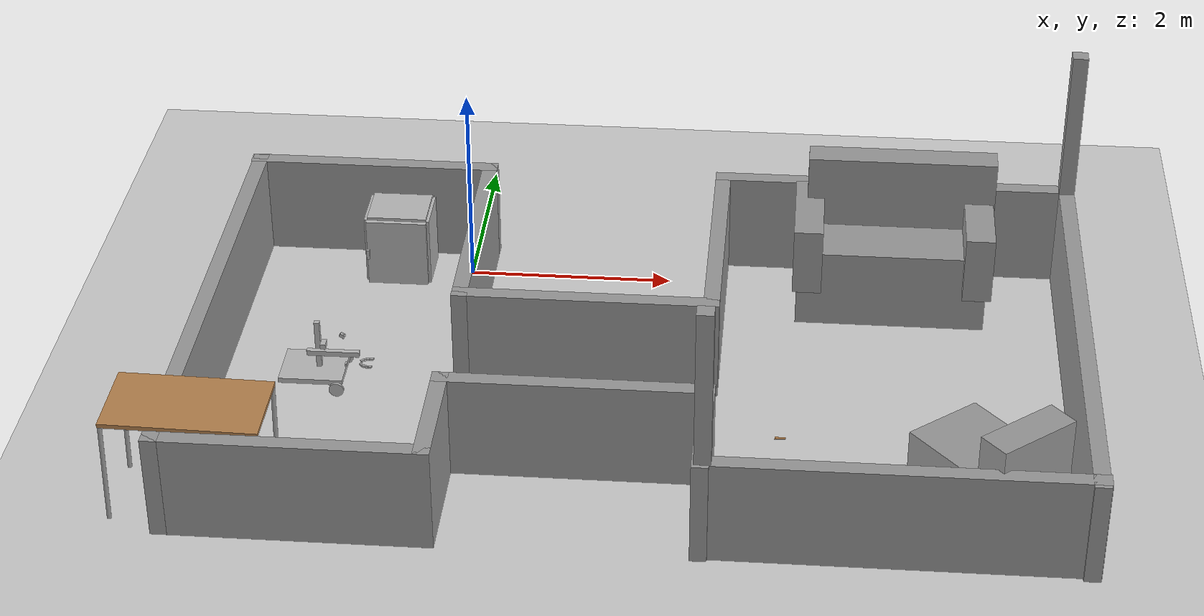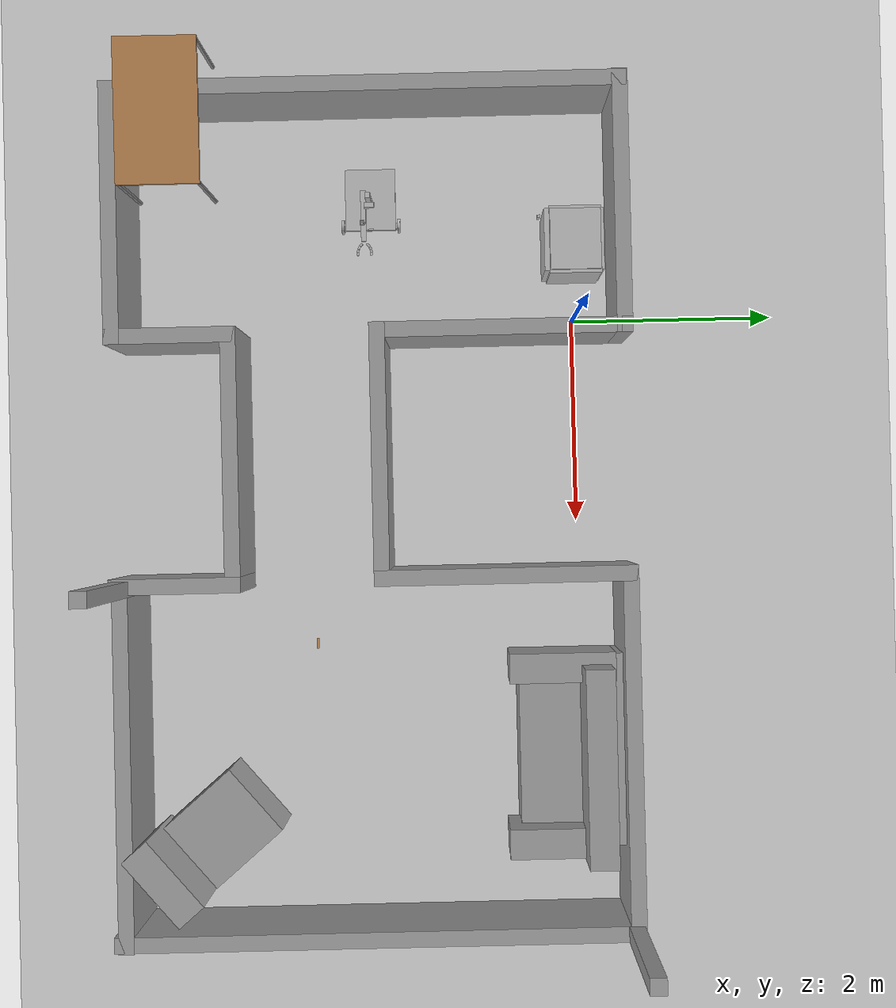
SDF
<sdf version="1.6">
 <world name="default">
  <light name="sun" type="directional">
   <pose>0 0 10 0 -0 0</pose>
   <diffuse>0.8 0.8 0.8 1</diffuse>
   <specular>0.1 0.1 0.1 1</specular>
   <attenuation>
    <range>1000</range>
    <constant>0.9</constant>
    <linear>0.01</linear>
    <quadratic>0.001</quadratic>
   </attenuation>
   <direction>-0.5 0.5 -1</direction>
  </light>
  <model name="ground_plane">
   <static>1</static>
   <link name="link">
    <collision name="collision">
     <geometry><plane><normal>0 0 1</normal><size>100 100</size></plane></geometry>
     <surface><friction><ode><mu>100</mu><mu2>50</mu2></ode></friction></surface>
    </collision>
    <visual name="visual">
     <cast_shadows>0</cast_shadows>
     <geometry><plane><normal>0 0 1</normal><size>100 100</size></plane></geometry>
     <material>
      <script><uri>file://media/materials/scripts/gazebo.material</uri><name>Gazebo/Grey</name></script>
     </material>
    </visual>
   </link>
  </model>
  <gravity>0 0 -9.8</gravity>
  <magnetic_field>6e-06 2.3e-05 -4.2e-05</magnetic_field>
  <atmosphere type="adiabatic"/>
  <physics name="default_physics" default="0" type="ode">
   <max_step_size>0.001</max_step_size>
   <real_time_factor>1</real_time_factor>
   <real_time_update_rate>1000</real_time_update_rate>
  </physics>
  <scene><ambient>0.4 0.4 0.4 1</ambient><background>0.7 0.7 0.7 1</background><shadows>1</shadows></scene>
  <spherical_coordinates>
   <surface_model>EARTH_WGS84</surface_model>
   <latitude_deg>0</latitude_deg>
   <longitude_deg>0</longitude_deg>
   <elevation>0</elevation>
   <heading_deg>0</heading_deg>
  </spherical_coordinates>
  <model name="popcan_arena">
   <pose>1.85412 -2.00368 0 0 -0 0</pose>
   <link name="Wall_1">
    <collision name="Wall_1_Collision">
     <geometry><box><size>5 0.15 1</size></box></geometry>
     <pose>0 0 0.5 0 -0 0</pose>
    </collision>
    <visual name="Wall_1_Visual">
     <pose>0 0 0.5 0 -0 0</pose>
     <geometry><box><size>5 0.15 1</size></box></geometry>
     <material>
      <script><uri>file://media/materials/scripts/gazebo.material</uri><name>Gazebo/Grey</name></script>
      <ambient>1 1 1 1</ambient>
     </material>
    </visual>
    <pose>4.04509 -0.01 0 0 -0 1.5708</pose>
   </link>
   <link name="Wall_2">
    <collision name="Wall_2_Collision">
     <geometry><box><size>0.15 0.15 2.5</size></box></geometry>
     <pose>0 0 1.25 0 -0 0</pose>
    </collision>
    <visual name="Wall_2_Visual">
     <pose>0 0 1.25 0 -0 0</pose>
     <geometry><box><size>0.15 0.15 2.5</size></box></geometry>
     <material>
      <script><uri>file://media/materials/scripts/gazebo.material</uri><name>Gazebo/Grey</name></script>
      <ambient>1 1 1 1</ambient>
     </material>
    </visual>
    <pose>4.04509 2.415 0 0 -0 0</pose>
   </link>
   <link name="Wall_26">
    <collision name="Wall_26_Collision">
     <geometry><box><size>0.15 0.15 2.5</size></box></geometry>
     <pose>0 0 1.25 0 -0 0</pose>
    </collision>
    <visual name="Wall_26_Visual">
     <pose>0 0 1.25 0 -0 0</pose>
     <geometry><box><size>0.15 0.15 2.5</size></box></geometry>
     <material>
      <script><uri>file://media/materials/scripts/gazebo.material</uri><name>Gazebo/Grey</name></script>
      <ambient>1 1 1 1</ambient>
     </material>
    </visual>
    <pose>0.695085 -2.385 0 0 -0 0</pose>
   </link>
   <link name="Wall_28">
    <collision name="Wall_28_Collision">
     <geometry><box><size>2.5 0.15 1</size></box></geometry>
     <pose>0 0 0.5 0 -0 0</pose>
    </collision>
    <visual name="Wall_28_Visual">
     <pose>0 0 0.5 0 -0 0</pose>
     <geometry><box><size>2.5 0.15 1</size></box></geometry>
     <material>
      <script><uri>file://media/materials/scripts/gazebo.material</uri><name>Gazebo/Grey</name></script>
      <ambient>1 1 1 1</ambient>
     </material>
    </visual>
    <pose>-0.519915 -1.325 0 0 -0 3.14159</pose>
   </link>
   <link name="Wall_29">
    <collision name="Wall_29_Collision">
     <geometry><box><size>1.25 0.15 1</size></box></geometry>
     <pose>0 0 0.5 0 -0 0</pose>
    </collision>
    <visual name="Wall_29_Visual">
     <pose>0 0 0.5 0 -0 0</pose>
     <geometry><box><size>1.25 0.15 1</size></box></geometry>
     <material>
      <script><uri>file://media/materials/scripts/gazebo.material</uri><name>Gazebo/Grey</name></script>
      <ambient>1 1 1 1</ambient>
     </material>
    </visual>
    <pose>-1.69491 -1.875 0 0 0 -1.5708</pose>
   </link>
   <link name="Wall_30">
    <collision name="Wall_30_Collision">
     <geometry><box><size>2.5 0.15 1</size></box></geometry>
     <pose>0 0 0.5 0 -0 0</pose>
    </collision>
    <visual name="Wall_30_Visual">
     <pose>0 0 0.5 0 -0 0</pose>
     <geometry><box><size>2.5 0.15 1</size></box></geometry>
     <material>
      <script><uri>file://media/materials/scripts/gazebo.material</uri><name>Gazebo/Grey</name></script>
      <ambient>1 1 1 1</ambient>
     </material>
    </visual>
    <pose>-2.86992 -2.425 0 0 -0 3.14159</pose>
   </link>
   <link name="Wall_33">
    <collision name="Wall_33_Collision">
     <geometry><box><size>5 0.15 1</size></box></geometry>
     <pose>0 0 0.5 0 -0 0</pose>
    </collision>
    <visual name="Wall_33_Visual">
     <pose>0 0 0.5 0 -0 0</pose>
     <geometry><box><size>5 0.15 1</size></box></geometry>
     <material>
      <script><uri>file://media/materials/scripts/gazebo.material</uri><name>Gazebo/Grey</name></script>
      <ambient>1 1 1 1</ambient>
     </material>
    </visual>
    <pose>-4.04491 0 0 0 -0 1.5708</pose>
   </link>
   <link name="Wall_35">
    <collision name="Wall_35_Collision">
     <geometry><box><size>3.5 0.15 1</size></box></geometry>
     <pose>0 0 0.5 0 -0 0</pose>
    </collision>
    <visual name="Wall_35_Visual">
     <pose>0 0 0.5 0 -0 0</pose>
     <geometry><box><size>3.5 0.15 1</size></box></geometry>
     <material>
      <script><uri>file://media/materials/scripts/gazebo.material</uri><name>Gazebo/Grey</name></script>
      <ambient>1 1 1 1</ambient>
     </material>
    </visual>
    <pose>2.32009 2.435 0 0 -0 0</pose>
   </link>
   <link name="Wall_4">
    <collision name="Wall_4_Collision">
     <geometry><box><size>2.5 0.15 1</size></box></geometry>
     <pose>0 0 0.5 0 -0 0</pose>
    </collision>
    <visual name="Wall_4_Visual">
     <pose>0 0 0.5 0 -0 0</pose>
     <geometry><box><size>2.5 0.15 1</size></box></geometry>
     <material>
      <script><uri>file://media/materials/scripts/gazebo.material</uri><name>Gazebo/Grey</name></script>
      <ambient>1 1 1 1</ambient>
     </material>
    </visual>
    <pose>0.645085 1.26 0 0 0 -1.5708</pose>
   </link>
   <link name="Wall_41">
    <collision name="Wall_41_Collision">
     <geometry><box><size>1.25 0.15 1</size></box></geometry>
     <pose>0 0 0.5 0 -0 0</pose>
    </collision>
    <visual name="Wall_41_Visual">
     <pose>0 0 0.5 0 -0 0</pose>
     <geometry><box><size>1.25 0.15 1</size></box></geometry>
     <material>
      <script><uri>file://media/materials/scripts/gazebo.material</uri><name>Gazebo/Grey</name></script>
      <ambient>1 1 1 1</ambient>
     </material>
    </visual>
    <pose>0.675085 -1.875 0 0 0 -1.5708</pose>
   </link>
   <link name="Wall_43">
    <collision name="Wall_43_Collision">
     <geometry><box><size>3.5 0.15 1</size></box></geometry>
     <pose>0 0 0.5 0 -0 0</pose>
    </collision>
    <visual name="Wall_43_Visual">
     <pose>0 0 0.5 0 -0 0</pose>
     <geometry><box><size>3.5 0.15 1</size></box></geometry>
     <material>
      <script><uri>file://media/materials/scripts/gazebo.material</uri><name>Gazebo/Grey</name></script>
      <ambient>1 1 1 1</ambient>
     </material>
    </visual>
    <pose>2.38008 -2.395 0 0 -0 3.14159</pose>
   </link>
   <link name="Wall_5">
    <collision name="Wall_5_Collision">
     <geometry><box><size>2.5 0.15 1</size></box></geometry>
     <pose>0 0 0.5 0 -0 0</pose>
    </collision>
    <visual name="Wall_5_Visual">
     <pose>0 0 0.5 0 -0 0</pose>
     <geometry><box><size>2.5 0.15 1</size></box></geometry>
     <material>
      <script><uri>file://media/materials/scripts/gazebo.material</uri><name>Gazebo/Grey</name></script>
      <ambient>1 1 1 1</ambient>
     </material>
    </visual>
    <pose>-0.529915 0.085 0 0 -0 3.14159</pose>
   </link>
   <link name="Wall_6">
    <collision name="Wall_6_Collision">
     <geometry><box><size>2.5 0.15 1</size></box></geometry>
     <pose>0 0 0.5 0 -0 0</pose>
    </collision>
    <visual name="Wall_6_Visual">
     <pose>0 0 0.5 0 -0 0</pose>
     <geometry><box><size>2.5 0.15 1</size></box></geometry>
     <material>
      <script><uri>file://media/materials/scripts/gazebo.material</uri><name>Gazebo/Grey</name></script>
      <ambient>1 1 1 1</ambient>
     </material>
    </visual>
    <pose>-1.70491 1.26 0 0 -0 1.5708</pose>
   </link>
   <link name="Wall_7">
    <collision name="Wall_7_Collision">
     <geometry><box><size>2.50034 0.15 1</size></box></geometry>
     <pose>0 0 0.5 0 -0 0</pose>
    </collision>
    <visual name="Wall_7_Visual">
     <pose>0 0 0.5 0 -0 0</pose>
     <geometry><box><size>2.50034 0.15 1</size></box></geometry>
     <material>
      <script><uri>file://media/materials/scripts/gazebo.material</uri><name>Gazebo/Grey</name></script>
      <ambient>1 1 1 1</ambient>
     </material>
    </visual>
    <pose>-2.87992 2.435 0 0 -0 3.14159</pose>
   </link>
   <static>1</static>
  </model>
  <model name="table">
   <static>0</static>
   <link name="link">
    <collision name="surface">
     <pose>0 0 1 0 -0 0</pose>
     <geometry><box><size>1.5 0.8 0.03</size></box></geometry>
     <surface><friction><ode><mu>0.6</mu><mu2>0.6</mu2></ode></friction></surface>
    </collision>
    <visual name="visual1">
     <pose>0 0 1 0 -0 0</pose>
     <geometry><box><size>1.4 0.8 0.04</size></box></geometry>
     <material>
      <script><uri>file://media/materials/scripts/gazebo.material</uri><name>Gazebo/Wood</name></script>
     </material>
    </visual>
    <collision name="front_left_leg">
     <pose>0.68 0.38 0.5 0 -0 0</pose>
     <geometry><cylinder><radius>0.02</radius><length>1</length></cylinder></geometry>
    </collision>
    <visual name="front_left_leg">
     <pose>0.68 0.38 0.5 0 -0 0</pose>
     <geometry><cylinder><radius>0.02</radius><length>1</length></cylinder></geometry>
     <material>
      <script><uri>file://media/materials/scripts/gazebo.material</uri><name>Gazebo/Grey</name></script>
     </material>
    </visual>
    <collision name="front_right_leg">
     <pose>0.68 -0.38 0.5 0 -0 0</pose>
     <geometry><cylinder><radius>0.02</radius><length>1</length></cylinder></geometry>
    </collision>
    <visual name="front_right_leg">
     <pose>0.68 -0.38 0.5 0 -0 0</pose>
     <geometry><cylinder><radius>0.02</radius><length>1</length></cylinder></geometry>
     <material>
      <script><uri>file://media/materials/scripts/gazebo.material</uri><name>Gazebo/Grey</name></script>
     </material>
    </visual>
    <collision name="back_right_leg">
     <pose>-0.68 -0.38 0.5 0 -0 0</pose>
     <geometry><cylinder><radius>0.02</radius><length>1</length></cylinder></geometry>
    </collision>
    <visual name="back_right_leg">
     <pose>-0.68 -0.38 0.5 0 -0 0</pose>
     <geometry><cylinder><radius>0.02</radius><length>1</length></cylinder></geometry>
     <material>
      <script><uri>file://media/materials/scripts/gazebo.material</uri><name>Gazebo/Grey</name></script>
     </material>
    </visual>
    <collision name="back_left_leg">
     <pose>-0.68 0.38 0.5 0 -0 0</pose>
     <geometry><cylinder><radius>0.02</radius><length>1</length></cylinder></geometry>
    </collision>
    <visual name="back_left_leg">
     <pose>-0.68 0.38 0.5 0 -0 0</pose>
     <geometry><cylinder><radius>0.02</radius><length>1</length></cylinder></geometry>
     <material>
      <script><uri>file://media/materials/scripts/gazebo.material</uri><name>Gazebo/Grey</name></script>
     </material>
    </visual>
    <inertial>
     <inertia><ixx>1</ixx><ixy>0</ixy><ixz>0</ixz><iyy>1</iyy><iyz>0</iyz><izz>1</izz></inertia>
     <mass>1</mass>
    </inertial>
   </link>
   <pose>-1.98549 -3.95311 0.012513 0 0.017877 -4e-06</pose>
  </model>
  <model name="couch">
   <link name="link_0">
    <pose>-0.01902 -0.002099 -0.285741 0 -0 0</pose>
    <inertial>
     <mass>1.44585</mass>
     <inertia>
      <ixx>0.195146</ixx>
      <ixy>0</ixy>
      <ixz>0</ixz>
      <iyy>0.481156</iyy>
      <iyz>0</iyz>
      <izz>0.526986</izz>
     </inertia>
    </inertial>
    <visual name="visual">
     <geometry><box><size>1.83678 1 0.787161</size></box></geometry>
     <material>
      <lighting>1</lighting>
      <script><uri>file://media/materials/scripts/gazebo.material</uri><name>Gazebo/Grey</name></script>
      <ambient>0.3 0.3 0.3 1</ambient>
      <diffuse>0.7 0.7 0.7 1</diffuse>
      <specular>0.01 0.01 0.01 1</specular>
      <emissive>0 0 0 1</emissive>
     </material>
    </visual>
    <collision name="collision">
     <geometry><box><size>1.83678 1 0.787161</size></box></geometry>
     <surface>
      <friction>
       <ode><mu>1</mu><mu2>1</mu2><fdir1>0 0 0</fdir1><slip1>0</slip1><slip2>0</slip2></ode>
       <torsional>
        <coefficient>1</coefficient>
        <patch_radius>0</patch_radius>
        <surface_radius>0</surface_radius>
        <use_patch_radius>1</use_patch_radius>
        <ode><slip>0</slip></ode>
       </torsional>
      </friction>
      <bounce><restitution_coefficient>0</restitution_coefficient><threshold>1e+06</threshold></bounce>
      <contact>
       <collide_without_contact>0</collide_without_contact>
       <collide_without_contact_bitmask>1</collide_without_contact_bitmask>
       <collide_bitmask>1</collide_bitmask>
       <ode>
        <soft_cfm>0</soft_cfm>
        <soft_erp>0.2</soft_erp>
        <kp>1e+13</kp>
        <kd>1</kd>
        <max_vel>0.01</max_vel>
        <min_depth>0</min_depth>
       </ode>
       <bullet>
        <split_impulse>1</split_impulse>
        <split_impulse_penetration_threshold>-0.01</split_impulse_penetration_threshold>
        <soft_cfm>0</soft_cfm>
        <soft_erp>0.2</soft_erp>
        <kp>1e+13</kp>
        <kd>1</kd>
       </bullet>
      </contact>
     </surface>
    </collision>
   </link>
   <link name="link_1">
    <pose>-0.837255 -0.094169 0.060748 0 -0 0</pose>
    <inertial>
     <mass>0.187695</mass>
     <inertia>
      <ixx>0.0226851</ixx>
      <ixy>0</ixy>
      <ixz>0</ixz>
      <iyy>0.00826742</iyy>
      <iyz>0</iyz>
      <izz>0.0168649</izz>
     </inertia>
    </inertial>
    <visual name="visual">
     <geometry><box><size>0.279699 1 0.671069</size></box></geometry>
     <material>
      <lighting>1</lighting>
      <script><uri>file://media/materials/scripts/gazebo.material</uri><name>Gazebo/Grey</name></script>
      <ambient>0.3 0.3 0.3 1</ambient>
      <diffuse>0.7 0.7 0.7 1</diffuse>
      <specular>0.01 0.01 0.01 1</specular>
      <emissive>0 0 0 1</emissive>
     </material>
    </visual>
    <collision name="collision">
     <geometry><box><size>0.279699 1 0.671069</size></box></geometry>
     <surface>
      <friction>
       <ode><mu>1</mu><mu2>1</mu2><fdir1>0 0 0</fdir1><slip1>0</slip1><slip2>0</slip2></ode>
       <torsional>
        <coefficient>1</coefficient>
        <patch_radius>0</patch_radius>
        <surface_radius>0</surface_radius>
        <use_patch_radius>1</use_patch_radius>
        <ode><slip>0</slip></ode>
       </torsional>
      </friction>
      <bounce><restitution_coefficient>0</restitution_coefficient><threshold>1e+06</threshold></bounce>
      <contact>
       <collide_without_contact>0</collide_without_contact>
       <collide_without_contact_bitmask>1</collide_without_contact_bitmask>
       <collide_bitmask>1</collide_bitmask>
       <ode>
        <soft_cfm>0</soft_cfm>
        <soft_erp>0.2</soft_erp>
        <kp>1e+13</kp>
        <kd>1</kd>
        <max_vel>0.01</max_vel>
        <min_depth>0</min_depth>
       </ode>
       <bullet>
        <split_impulse>1</split_impulse>
        <split_impulse_penetration_threshold>-0.01</split_impulse_penetration_threshold>
        <soft_cfm>0</soft_cfm>
        <soft_erp>0.2</soft_erp>
        <kp>1e+13</kp>
        <kd>1</kd>
       </bullet>
      </contact>
     </surface>
    </collision>
   </link>
   <link name="link_1_clone">
    <pose>0.806895 -0.123312 0.060748 0 -0 0</pose>
    <inertial>
     <mass>0.187695</mass>
     <inertia>
      <ixx>0.0226851</ixx>
      <ixy>0</ixy>
      <ixz>0</ixz>
      <iyy>0.00826742</iyy>
      <iyz>0</iyz>
      <izz>0.0168649</izz>
     </inertia>
    </inertial>
    <visual name="visual">
     <geometry><box><size>0.279699 1 0.671069</size></box></geometry>
     <material>
      <lighting>1</lighting>
      <script><uri>file://media/materials/scripts/gazebo.material</uri><name>Gazebo/Grey</name></script>
      <ambient>0.3 0.3 0.3 1</ambient>
      <diffuse>0.7 0.7 0.7 1</diffuse>
      <specular>0.01 0.01 0.01 1</specular>
      <emissive>0 0 0 1</emissive>
      <shader type="pixel"/>
     </material>
    </visual>
    <collision name="collision">
     <geometry><box><size>0.279699 1 0.671069</size></box></geometry>
     <surface>
      <friction>
       <ode><mu>1</mu><mu2>1</mu2><fdir1>0 0 0</fdir1><slip1>0</slip1><slip2>0</slip2></ode>
       <torsional>
        <coefficient>1</coefficient>
        <patch_radius>0</patch_radius>
        <surface_radius>0</surface_radius>
        <use_patch_radius>1</use_patch_radius>
        <ode><slip>0</slip></ode>
       </torsional>
      </friction>
      <bounce><restitution_coefficient>0</restitution_coefficient><threshold>1e+06</threshold></bounce>
      <contact>
       <collide_without_contact>0</collide_without_contact>
       <collide_without_contact_bitmask>1</collide_without_contact_bitmask>
       <collide_bitmask>1</collide_bitmask>
       <ode>
        <soft_cfm>0</soft_cfm>
        <soft_erp>0.2</soft_erp>
        <kp>1e+13</kp>
        <kd>1</kd>
        <max_vel>0.01</max_vel>
        <min_depth>0</min_depth>
       </ode>
       <bullet>
        <split_impulse>1</split_impulse>
        <split_impulse_penetration_threshold>-0.01</split_impulse_penetration_threshold>
        <soft_cfm>0</soft_cfm>
        <soft_erp>0.2</soft_erp>
        <kp>1e+13</kp>
        <kd>1</kd>
       </bullet>
      </contact>
     </surface>
    </collision>
   </link>
   <link name="link_2">
    <pose>0.049389 0.21958 0.164245 0 -0 0</pose>
    <inertial>
     <mass>0.659998</mass>
     <inertia>
      <ixx>0.100915</ixx>
      <ixy>0</ixy>
      <ixz>0</ixz>
      <iyy>0.279803</iyy>
      <iyz>0</iyz>
      <izz>0.187069</izz>
     </inertia>
    </inertial>
    <visual name="visual">
     <geometry><box><size>1.82397 0.272721 1.32681</size></box></geometry>
     <material>
      <lighting>1</lighting>
      <script><uri>file://media/materials/scripts/gazebo.material</uri><name>Gazebo/Grey</name></script>
      <ambient>0.3 0.3 0.3 1</ambient>
      <diffuse>0.7 0.7 0.7 1</diffuse>
      <specular>0.01 0.01 0.01 1</specular>
      <emissive>0 0 0 1</emissive>
     </material>
    </visual>
    <collision name="collision">
     <geometry><box><size>1.82397 0.272721 1.32681</size></box></geometry>
     <surface>
      <friction>
       <ode><mu>1</mu><mu2>1</mu2><fdir1>0 0 0</fdir1><slip1>0</slip1><slip2>0</slip2></ode>
       <torsional>
        <coefficient>1</coefficient>
        <patch_radius>0</patch_radius>
        <surface_radius>0</surface_radius>
        <use_patch_radius>1</use_patch_radius>
        <ode><slip>0</slip></ode>
       </torsional>
      </friction>
      <bounce><restitution_coefficient>0</restitution_coefficient><threshold>1e+06</threshold></bounce>
      <contact>
       <collide_without_contact>0</collide_without_contact>
       <collide_without_contact_bitmask>1</collide_without_contact_bitmask>
       <collide_bitmask>1</collide_bitmask>
       <ode>
        <soft_cfm>0</soft_cfm>
        <soft_erp>0.2</soft_erp>
        <kp>1e+13</kp>
        <kd>1</kd>
        <max_vel>0.01</max_vel>
        <min_depth>0</min_depth>
       </ode>
       <bullet>
        <split_impulse>1</split_impulse>
        <split_impulse_penetration_threshold>-0.01</split_impulse_penetration_threshold>
        <soft_cfm>0</soft_cfm>
        <soft_erp>0.2</soft_erp>
        <kp>1e+13</kp>
        <kd>1</kd>
       </bullet>
      </contact>
     </surface>
    </collision>
   </link>
   <static>0</static>
   <pose>4.20967 -0.142024 0.679321 0 0 -0.000334</pose>
  </model>
  <model name="chair">
   <link name="link_0">
    <pose>0.00602 0.317394 -0.068747 0 -0 0</pose>
    <inertial>
     <mass>0.46727</mass>
     <inertia>
      <ixx>0.0476836</ixx>
      <ixy>0</ixy>
      <ixz>0</ixz>
      <iyy>0.0433394</iyy>
      <iyz>0</iyz>
      <izz>0.0508582</izz>
     </inertia>
    </inertial>
    <visual name="visual">
     <geometry><box><size>0.772827 0.841913 0.718158</size></box></geometry>
     <material>
      <lighting>1</lighting>
      <script><uri>file://media/materials/scripts/gazebo.material</uri><name>Gazebo/Grey</name></script>
      <ambient>0.3 0.3 0.3 1</ambient>
      <diffuse>0.7 0.7 0.7 1</diffuse>
      <specular>0.01 0.01 0.01 1</specular>
      <emissive>0 0 0 1</emissive>
     </material>
    </visual>
    <collision name="collision">
     <geometry><box><size>0.772827 0.841913 0.718158</size></box></geometry>
     <surface>
      <friction>
       <ode><mu>1</mu><mu2>1</mu2><fdir1>0 0 0</fdir1><slip1>0</slip1><slip2>0</slip2></ode>
       <torsional>
        <coefficient>1</coefficient>
        <patch_radius>0</patch_radius>
        <surface_radius>0</surface_radius>
        <use_patch_radius>1</use_patch_radius>
        <ode><slip>0</slip></ode>
       </torsional>
      </friction>
      <bounce><restitution_coefficient>0</restitution_coefficient><threshold>1e+06</threshold></bounce>
      <contact>
       <collide_without_contact>0</collide_without_contact>
       <collide_without_contact_bitmask>1</collide_without_contact_bitmask>
       <collide_bitmask>1</collide_bitmask>
       <ode>
        <soft_cfm>0</soft_cfm>
        <soft_erp>0.2</soft_erp>
        <kp>1e+13</kp>
        <kd>1</kd>
        <max_vel>0.01</max_vel>
        <min_depth>0</min_depth>
       </ode>
       <bullet>
        <split_impulse>1</split_impulse>
        <split_impulse_penetration_threshold>-0.01</split_impulse_penetration_threshold>
        <soft_cfm>0</soft_cfm>
        <soft_erp>0.2</soft_erp>
        <kp>1e+13</kp>
        <kd>1</kd>
       </bullet>
      </contact>
     </surface>
    </collision>
   </link>
   <link name="link_1">
    <pose>-0.006027 -0.317398 0.068747 0 -0 0</pose>
    <inertial>
     <mass>0.35363</mass>
     <inertia>
      <ixx>0.0617854</ixx>
      <ixy>0</ixy>
      <ixz>0</ixz>
      <iyy>0.0784715</iyy>
      <iyz>0</iyz>
      <izz>0.0222576</izz>
     </inertia>
    </inertial>
    <visual name="visual">
     <geometry><box><size>0.812859 0.307459 1.41495</size></box></geometry>
     <material>
      <lighting>1</lighting>
      <script><uri>file://media/materials/scripts/gazebo.material</uri><name>Gazebo/Grey</name></script>
      <ambient>0.3 0.3 0.3 1</ambient>
      <diffuse>0.7 0.7 0.7 1</diffuse>
      <specular>0.01 0.01 0.01 1</specular>
      <emissive>0 0 0 1</emissive>
     </material>
    </visual>
    <collision name="collision">
     <geometry><box><size>0.812859 0.307459 1.41495</size></box></geometry>
     <surface>
      <friction>
       <ode><mu>1</mu><mu2>1</mu2><fdir1>0 0 0</fdir1><slip1>0</slip1><slip2>0</slip2></ode>
       <torsional>
        <coefficient>1</coefficient>
        <patch_radius>0</patch_radius>
        <surface_radius>0</surface_radius>
        <use_patch_radius>1</use_patch_radius>
        <ode><slip>0</slip></ode>
       </torsional>
      </friction>
      <bounce><restitution_coefficient>0</restitution_coefficient><threshold>1e+06</threshold></bounce>
      <contact>
       <collide_without_contact>0</collide_without_contact>
       <collide_without_contact_bitmask>1</collide_without_contact_bitmask>
       <collide_bitmask>1</collide_bitmask>
       <ode>
        <soft_cfm>0</soft_cfm>
        <soft_erp>0.2</soft_erp>
        <kp>1e+13</kp>
        <kd>1</kd>
        <max_vel>0.01</max_vel>
        <min_depth>0</min_depth>
       </ode>
       <bullet>
        <split_impulse>1</split_impulse>
        <split_impulse_penetration_threshold>-0.01</split_impulse_penetration_threshold>
        <soft_cfm>0</soft_cfm>
        <soft_erp>0.2</soft_erp>
        <kp>1e+13</kp>
        <kd>1</kd>
       </bullet>
      </contact>
     </surface>
    </collision>
   </link>
   <static>0</static>
   <pose>5.08793 -3.75825 0.427826 0 -0 0.705865</pose>
  </model>
  <model name="popcanbot">
   <link name="base_link">
    <inertial>
     <pose>-0.24902 0 -4.9e-05 0 -0 0</pose>
     <mass>10.2</mass>
     <inertia>
      <ixx>0.213547</ixx>
      <ixy>0</ixy>
      <ixz>-0.000125345</ixz>
      <iyy>0.327216</iyy>
      <iyz>0</iyz>
      <izz>0.53542</izz>
     </inertia>
    </inertial>
    <collision name="base_link_fixed_joint_lump__chassis_link_collision">
     <pose>-0.2545 0 0 0 -0 0</pose>
     <geometry><box><size>0.609 0.5 0.05</size></box></geometry>
    </collision>
    <collision name="base_link_fixed_joint_lump__main_axle_collision_1">
     <pose>0 0 -0.055 0 -0 0</pose>
     <geometry><box><size>0.0625 0.55 0.0625</size></box></geometry>
    </collision>
    <collision name="base_link_fixed_joint_lump__sonar_link_collision_2">
     <pose>0.05 0 0.05 0 -0.1 0</pose>
     <geometry><box><size>0.015 0.05 0.02</size></box></geometry>
    </collision>
    <visual name="base_link_fixed_joint_lump__chassis_link_visual">
     <pose>-0.2545 0 0 0 -0 0</pose>
     <geometry><box><size>0.609 0.5 0.05</size></box></geometry>
    </visual>
    <visual name="base_link_fixed_joint_lump__main_axle_visual_1">
     <pose>0 0 -0.055 0 -0 0</pose>
     <geometry><box><size>0.0625 0.55 0.0625</size></box></geometry>
    </visual>
    <visual name="base_link_fixed_joint_lump__sonar_link_visual_2">
     <pose>0.05 0 0.05 0 -0.1 0</pose>
     <geometry><box><size>0.015 0.05 0.02</size></box></geometry>
     <material><script><uri>__default__</uri><name>__default__</name></script></material>
    </visual>
    <sensor name="sonar1" type="ray">
     <update_rate>5</update_rate>
     <ray>
      <scan>
       <horizontal>
        <samples>5</samples>
        <resolution>1</resolution>
        <min_angle>-0.25</min_angle>
        <max_angle>0.25</max_angle>
       </horizontal>
       <vertical>
        <samples>5</samples>
        <resolution>1</resolution>
        <min_angle>-0.25</min_angle>
        <max_angle>0.25</max_angle>
       </vertical>
      </scan>
      <range><min>0.01</min><max>0.75</max><resolution>0.01</resolution></range>
     </ray>
     <plugin name="gazebo_ros_range" filename="libgazebo_ros_range.so">
      <gaussianNoise>0.005</gaussianNoise>
      <alwaysOn>true</alwaysOn>
      <updateRate>5</updateRate>
      <topicName>/popcanbot/sonar</topicName>
      <frameName>sonar_link</frameName>
      <fov>0.5</fov>
      <radiation>ultrasound</radiation>
      <robotNamespace>/</robotNamespace>
     </plugin>
     <pose>0.05 0 0.05 0 -0.1 0</pose>
    </sensor>
   </link>
   <link name="arm_vertical">
    <pose>-0.203 0 0.0125 0 -0 0</pose>
    <inertial>
     <pose>0 0 0.25 0 -0 0</pose>
     <mass>1</mass>
     <inertia>
      <ixx>0.0210417</ixx>
      <ixy>0</ixy>
      <ixz>0</ixz>
      <iyy>0.0210417</iyy>
      <iyz>0</iyz>
      <izz>0.000416667</izz>
     </inertia>
    </inertial>
    <collision name="arm_vertical_collision">
     <pose>0 0 0.25 0 -0 0</pose>
     <geometry><box><size>0.05 0.05 0.5</size></box></geometry>
    </collision>
    <visual name="arm_vertical_visual">
     <pose>0 0 0.25 0 -0 0</pose>
     <geometry><box><size>0.05 0.05 0.5</size></box></geometry>
    </visual>
   </link>
   <joint name="arm_vertical_rotary_joint" type="revolute">
    <child>arm_vertical</child>
    <parent>base_link</parent>
    <axis>
     <xyz>0 0 -1</xyz>
     <limit><lower>-1.6</lower><upper>1.6</upper><effort>100</effort><velocity>0.5</velocity></limit>
     <dynamics>
      <damping>0.1</damping>
      <friction>0.1</friction>
      <spring_reference>0</spring_reference>
      <spring_stiffness>0</spring_stiffness>
     </dynamics>
     <use_parent_model_frame>1</use_parent_model_frame>
    </axis>
   </joint>
   <link name="arm_vertical_platform">
    <pose>-0.153 0 0.2625 0 -0 0</pose>
    <inertial>
     <mass>0.1</mass>
     <inertia>
      <ixx>0.000104167</ixx>
      <ixy>0</ixy>
      <ixz>0</ixz>
      <iyy>4.16667e-05</iyy>
      <iyz>0</iyz>
      <izz>0.000104167</izz>
     </inertia>
    </inertial>
    <collision name="arm_vertical_platform_collision">
     <geometry><box><size>0.05 0.1 0.05</size></box></geometry>
    </collision>
    <visual name="arm_vertical_platform_visual">
     <geometry><box><size>0.05 0.1 0.05</size></box></geometry>
    </visual>
   </link>
   <joint name="arm_vertical_platform_joint" type="prismatic">
    <child>arm_vertical_platform</child>
    <parent>arm_vertical</parent>
    <axis>
     <xyz>0 0 1</xyz>
     <limit><lower>-0.14</lower><upper>0.35</upper><effort>20</effort><velocity>0.25</velocity></limit>
     <dynamics>
      <damping>0.1</damping>
      <friction>0.1</friction>
      <spring_reference>0</spring_reference>
      <spring_stiffness>0</spring_stiffness>
     </dynamics>
     <use_parent_model_frame>1</use_parent_model_frame>
    </axis>
   </joint>
   <link name="arm_horizontal">
    <pose>-0.053 -0.06 0.2125 0 -0 0</pose>
    <inertial>
     <mass>0.2</mass>
     <inertia>
      <ixx>8.33333e-05</ixx>
      <ixy>0</ixy>
      <ixz>0</ixz>
      <iyy>0.00420833</iyy>
      <iyz>0</iyz>
      <izz>0.00420833</izz>
     </inertia>
    </inertial>
    <collision name="arm_horizontal_collision">
     <geometry><box><size>0.5 0.05 0.05</size></box></geometry>
    </collision>
    <visual name="arm_horizontal_visual"><geometry><box><size>0.5 0.05 0.05</size></box></geometry></visual>
   </link>
   <joint name="arm_horizontal_platform_joint" type="prismatic">
    <child>arm_horizontal</child>
    <parent>arm_vertical_platform</parent>
    <axis>
     <xyz>1 0 0</xyz>
     <limit><lower>-0.22</lower><upper>0.05</upper><effort>20</effort><velocity>0.25</velocity></limit>
     <dynamics>
      <damping>0.1</damping>
      <friction>0.1</friction>
      <spring_reference>0</spring_reference>
      <spring_stiffness>0</spring_stiffness>
     </dynamics>
     <use_parent_model_frame>1</use_parent_model_frame>
    </axis>
   </joint>
   <link name="camera_mast">
    <pose>0.047 -0.06 0.4125 0 -0 0</pose>
    <inertial>
     <mass>0.2</mass>
     <inertia>
      <ixx>3.59176e-05</ixx>
      <ixy>0</ixy>
      <ixz>6.21359e-06</ixz>
      <iyy>4.91667e-05</iyy>
      <iyz>0</iyz>
      <izz>4.65824e-05</izz>
     </inertia>
    </inertial>
    <collision name="camera_mast_collision">
     <geometry><box><size>0.04 0.02 0.03</size></box></geometry>
    </collision>
    <collision name="camera_mast_fixed_joint_lump__camera_link_collision_1">
     <pose>0 0 0 0 0.6 0</pose>
     <geometry><box><size>0.05 0.04 0.03</size></box></geometry>
    </collision>
    <visual name="camera_mast_visual"><geometry><box><size>0.04 0.02 0.03</size></box></geometry></visual>
    <visual name="camera_mast_fixed_joint_lump__camera_link_visual_1">
     <pose>0 0 0 0 0.6 0</pose>
     <geometry><box><size>0.05 0.04 0.03</size></box></geometry>
     <material><script><uri>__default__</uri><name>__default__</name></script></material>
    </visual>
    <sensor name="camera1" type="camera">
     <update_rate>10</update_rate>
     <camera name="head">
      <horizontal_fov>1.5</horizontal_fov>
      <image><width>640</width><height>480</height><format>R8G8B8</format></image>
      <clip><near>0.05</near><far>50</far></clip>
      <noise><type>gaussian</type><mean>0</mean><stddev>0.007</stddev></noise>
     </camera>
     <plugin name="camera_controller" filename="libgazebo_ros_camera.so">
      <alwaysOn>true</alwaysOn>
      <updateRate>0.0</updateRate>
      <cameraName>popcanbot/camera1</cameraName>
      <imageTopicName>image_raw</imageTopicName>
      <cameraInfoTopicName>camera_info</cameraInfoTopicName>
      <frameName>camera_link_optical</frameName>
      <hackBaseline>0.0</hackBaseline>
      <distortionK1>0.0</distortionK1>
      <distortionK2>0.0</distortionK2>
      <distortionK3>0.0</distortionK3>
      <distortionT1>0.0</distortionT1>
      <distortionT2>0.0</distortionT2>
      <robotNamespace>/</robotNamespace>
     </plugin>
     <pose>0 0 0 0 0.6 0</pose>
    </sensor>
   </link>
   <joint name="camera_mast_joint" type="prismatic">
    <child>camera_mast</child>
    <parent>arm_horizontal</parent>
    <axis>
     <xyz>0 0 1</xyz>
     <limit><lower>0</lower><upper>0.5</upper><effort>20</effort><velocity>0.25</velocity></limit>
     <dynamics>
      <damping>0.1</damping>
      <friction>0.1</friction>
      <spring_reference>0</spring_reference>
      <spring_stiffness>0</spring_stiffness>
     </dynamics>
     <use_parent_model_frame>1</use_parent_model_frame>
    </axis>
   </joint>
   <link name="gripper_left">
    <pose>0.197 -0.047 0.1125 0 -0 0.9</pose>
    <inertial>
     <pose>0.069339 -0.019771 0 0 -0 0</pose>
     <mass>0.2</mass>
     <inertia>
      <ixx>8.09228e-05</ixx>
      <ixy>0.000101107</ixy>
      <ixz>0</ixz>
      <iyy>0.000183802</iyy>
      <iyz>0</iyz>
      <izz>0.000251392</izz>
     </inertia>
    </inertial>
    <collision name="gripper_left_collision">
     <pose>0.03 0 0 0 -0 0</pose>
     <geometry><box><size>0.04 0.02 0.02</size></box></geometry>
    </collision>
    <collision name="gripper_left_mid1_collision_1">
     <pose>0.058832 -0.008291 0 0 0 -0.28</pose>
     <geometry><box><size>0.04 0.02 0.02</size></box></geometry>
    </collision>
    <collision name="gripper_left_mid2_collision_2">
     <pose>0.084249 -0.024226 0 0 0 -0.56</pose>
     <geometry><box><size>0.04 0.02 0.02</size></box></geometry>
    </collision>
    <collision name="gripper_left_tip_collision_3">
     <pose>0.104273 -0.046566 0 0 0 -0.84</pose>
     <geometry><box><size>0.04 0.02 0.02</size></box></geometry>
    </collision>
    <visual name="gripper_left_visual">
     <pose>0.03 0 0 0 -0 0</pose>
     <geometry><box><size>0.04 0.02 0.02</size></box></geometry>
    </visual>
    <visual name="gripper_left_mid1_visual_1">
     <pose>0.058832 -0.008291 0 0 0 -0.28</pose>
     <geometry><box><size>0.04 0.02 0.02</size></box></geometry>
    </visual>
    <visual name="gripper_left_mid2_visual_2">
     <pose>0.084249 -0.024226 0 0 0 -0.56</pose>
     <geometry><box><size>0.04 0.02 0.02</size></box></geometry>
    </visual>
    <visual name="gripper_left_tip_visual_3">
     <pose>0.104273 -0.046566 0 0 0 -0.84</pose>
     <geometry><box><size>0.04 0.02 0.02</size></box></geometry>
    </visual>
   </link>
   <joint name="gripper_left_joint" type="revolute">
    <child>gripper_left</child>
    <parent>arm_horizontal</parent>
    <axis>
     <xyz>0 0 1</xyz>
     <limit><lower>-0.5</lower><upper>0</upper><effort>200</effort><velocity>0.5</velocity></limit>
     <dynamics>
      <damping>0.1</damping>
      <friction>0.1</friction>
      <spring_reference>0</spring_reference>
      <spring_stiffness>0</spring_stiffness>
     </dynamics>
     <use_parent_model_frame>1</use_parent_model_frame>
    </axis>
   </joint>
   <link name="gripper_right">
    <pose>0.197 -0.073 0.1125 -3.14159 0 -0.9</pose>
    <inertial>
     <pose>0.069339 -0.019771 0 0 -0 0</pose>
     <mass>0.2</mass>
     <inertia>
      <ixx>8.09228e-05</ixx>
      <ixy>0.000101107</ixy>
      <ixz>0</ixz>
      <iyy>0.000183802</iyy>
      <iyz>0</iyz>
      <izz>0.000251392</izz>
     </inertia>
    </inertial>
    <collision name="gripper_right_collision">
     <pose>0.03 0 0 0 -0 0</pose>
     <geometry><box><size>0.04 0.02 0.02</size></box></geometry>
    </collision>
    <collision name="gripper_right_mid1_collision_1">
     <pose>0.058832 -0.008291 0 0 0 -0.28</pose>
     <geometry><box><size>0.04 0.02 0.02</size></box></geometry>
    </collision>
    <collision name="gripper_right_mid2_collision_2">
     <pose>0.084249 -0.024226 0 0 0 -0.56</pose>
     <geometry><box><size>0.04 0.02 0.02</size></box></geometry>
    </collision>
    <collision name="gripper_right_tip_collision_3">
     <pose>0.104273 -0.046566 0 0 0 -0.84</pose>
     <geometry><box><size>0.04 0.02 0.02</size></box></geometry>
    </collision>
    <visual name="gripper_right_visual">
     <pose>0.03 0 0 0 -0 0</pose>
     <geometry><box><size>0.04 0.02 0.02</size></box></geometry>
    </visual>
    <visual name="gripper_right_mid1_visual_1">
     <pose>0.058832 -0.008291 0 0 0 -0.28</pose>
     <geometry><box><size>0.04 0.02 0.02</size></box></geometry>
    </visual>
    <visual name="gripper_right_mid2_visual_2">
     <pose>0.084249 -0.024226 0 0 0 -0.56</pose>
     <geometry><box><size>0.04 0.02 0.02</size></box></geometry>
    </visual>
    <visual name="gripper_right_tip_visual_3">
     <pose>0.104273 -0.046566 0 0 0 -0.84</pose>
     <geometry><box><size>0.04 0.02 0.02</size></box></geometry>
    </visual>
   </link>
   <joint name="gripper_right_joint" type="revolute">
    <child>gripper_right</child>
    <parent>arm_horizontal</parent>
    <axis>
     <xyz>0 0 -1</xyz>
     <limit><lower>-0.5</lower><upper>0</upper><effort>200</effort><velocity>0.5</velocity></limit>
     <dynamics>
      <damping>0.1</damping>
      <friction>0.1</friction>
      <spring_reference>0</spring_reference>
      <spring_stiffness>0</spring_stiffness>
     </dynamics>
     <use_parent_model_frame>1</use_parent_model_frame>
    </axis>
   </joint>
   <link name="caster_block">
    <pose>-0.509 0 -0.025 0 -0 0</pose>
    <inertial>
     <mass>0.1</mass>
     <inertia><ixx>1.5e-05</ixx><ixy>0</ixy><ixz>0</ixz><iyy>1.5e-05</iyy><iyz>0</iyz><izz>1.5e-05</izz></inertia>
    </inertial>
    <collision name="caster_block_collision">
     <geometry><box><size>0.03 0.03 0.03</size></box></geometry>
    </collision>
    <visual name="caster_block_visual"><geometry><box><size>0.03 0.03 0.03</size></box></geometry></visual>
   </link>
   <joint name="caster_joint" type="revolute">
    <child>caster_block</child>
    <parent>base_link</parent>
    <axis>
     <xyz>0 0 1</xyz>
     <limit><lower>-1e+16</lower><upper>1e+16</upper></limit>
     <dynamics><spring_reference>0</spring_reference><spring_stiffness>0</spring_stiffness></dynamics>
     <use_parent_model_frame>1</use_parent_model_frame>
    </axis>
   </joint>
   <link name="wheel_caster">
    <pose>-0.489 0 -0.085 0 -0 0</pose>
    <inertial>
     <pose>0 0 0 1.5708 -0 0</pose>
     <mass>0.1</mass>
     <inertia>
      <ixx>4.52083e-05</ixx>
      <ixy>0</ixy>
      <ixz>0</ixz>
      <iyy>4.52083e-05</iyy>
      <iyz>0</iyz>
      <izz>8e-05</izz>
     </inertia>
    </inertial>
    <collision name="wheel_caster_collision">
     <pose>0 0 0 1.5708 -0 0</pose>
     <geometry><cylinder><length>0.025</length><radius>0.04</radius></cylinder></geometry>
     <surface>
      <contact><ode><kp>1e+07</kp><kd>1</kd></ode></contact>
      <friction><ode><mu>20</mu><mu2>10</mu2></ode></friction>
     </surface>
    </collision>
    <visual name="wheel_caster_visual">
     <pose>0 0 0 1.5708 -0 0</pose>
     <geometry><cylinder><length>0.025</length><radius>0.04</radius></cylinder></geometry>
     <material><script><uri>__default__</uri><name>__default__</name></script></material>
    </visual>
   </link>
   <joint name="wheel_caster_joint" type="revolute">
    <child>wheel_caster</child>
    <parent>caster_block</parent>
    <axis>
     <xyz>0 1 0</xyz>
     <limit><lower>-1e+16</lower><upper>1e+16</upper></limit>
     <dynamics><spring_reference>0</spring_reference><spring_stiffness>0</spring_stiffness></dynamics>
     <use_parent_model_frame>1</use_parent_model_frame>
    </axis>
   </joint>
   <link name="wheel_front_left">
    <pose>0 0.28 -0.055 0 -0 0</pose>
    <inertial>
     <pose>0 0 0 1.5708 -0 0</pose>
     <mass>0.2</mass>
     <inertia>
      <ixx>0.000255417</ixx>
      <ixy>0</ixy>
      <ixz>0</ixz>
      <iyy>0.000255417</iyy>
      <iyz>0</iyz>
      <izz>0.00049</izz>
     </inertia>
    </inertial>
    <collision name="wheel_front_left_collision">
     <pose>0 0 0 1.5708 -0 0</pose>
     <geometry><cylinder><length>0.025</length><radius>0.07</radius></cylinder></geometry>
     <surface>
      <contact><ode><kp>1e+07</kp><kd>1</kd></ode></contact>
      <friction><ode><mu>200</mu><mu2>100</mu2></ode></friction>
     </surface>
    </collision>
    <visual name="wheel_front_left_visual">
     <pose>0 0 0 1.5708 -0 0</pose>
     <geometry><cylinder><length>0.025</length><radius>0.07</radius></cylinder></geometry>
     <material><script><uri>__default__</uri><name>__default__</name></script></material>
    </visual>
   </link>
   <joint name="wheel_front_left_joint" type="revolute">
    <child>wheel_front_left</child>
    <parent>base_link</parent>
    <axis>
     <xyz>0 1 0</xyz>
     <limit><lower>-1e+16</lower><upper>1e+16</upper></limit>
     <dynamics><spring_reference>0</spring_reference><spring_stiffness>0</spring_stiffness></dynamics>
     <use_parent_model_frame>1</use_parent_model_frame>
    </axis>
   </joint>
   <link name="wheel_front_right">
    <pose>0 -0.28 -0.055 0 -0 0</pose>
    <inertial>
     <pose>0 0 0 1.5708 -0 0</pose>
     <mass>0.2</mass>
     <inertia>
      <ixx>0.000255417</ixx>
      <ixy>0</ixy>
      <ixz>0</ixz>
      <iyy>0.000255417</iyy>
      <iyz>0</iyz>
      <izz>0.00049</izz>
     </inertia>
    </inertial>
    <collision name="wheel_front_right_collision">
     <pose>0 0 0 1.5708 -0 0</pose>
     <geometry><cylinder><length>0.025</length><radius>0.07</radius></cylinder></geometry>
     <surface>
      <contact><ode><kp>1e+07</kp><kd>1</kd></ode></contact>
      <friction><ode><mu>200</mu><mu2>100</mu2></ode></friction>
     </surface>
    </collision>
    <visual name="wheel_front_right_visual">
     <pose>0 0 0 1.5708 -0 0</pose>
     <geometry><cylinder><length>0.025</length><radius>0.07</radius></cylinder></geometry>
     <material><script><uri>__default__</uri><name>__default__</name></script></material>
    </visual>
   </link>
   <joint name="wheel_front_right_joint" type="revolute">
    <child>wheel_front_right</child>
    <parent>base_link</parent>
    <axis>
     <xyz>0 1 0</xyz>
     <limit><lower>-1e+16</lower><upper>1e+16</upper></limit>
     <dynamics><spring_reference>0</spring_reference><spring_stiffness>0</spring_stiffness></dynamics>
     <use_parent_model_frame>1</use_parent_model_frame>
    </axis>
   </joint>
   <static>0</static>
   <plugin name="gazebo_ros_control" filename="libgazebo_ros_control.so">
    <robotNamespace>/popcanbot</robotNamespace>
    <robotParam>robot_description</robotParam>
    <robotSimType>gazebo_ros_control/DefaultRobotHWSim</robotSimType>
   </plugin>
   <plugin name="differential_drive_controller" filename="libgazebo_ros_diff_drive.so">
    <alwaysOn>true</alwaysOn>
    <updateRate>10</updateRate>
    <legacyMode>false</legacyMode>
    <leftJoint>wheel_front_left_joint</leftJoint>
    <rightJoint>wheel_front_right_joint</rightJoint>
    <wheelSeparation>0.56</wheelSeparation>
    <wheelDiameter>0.14</wheelDiameter>
    <torque>20</torque>
    <commandTopic>/popcanbot/cmd_vel</commandTopic>
    <odometryTopic>/popcanbot/odom</odometryTopic>
    <odometryFrame>odom</odometryFrame>
    <robotBaseFrame>base_link</robotBaseFrame>
    <robotNamespace>/</robotNamespace>
   </plugin>
   <pose>-1 -2 0.13 0 -0 0</pose>
  </model>
  <model name="fridge">
   <link name="fridge_base_link">
    <inertial>
     <pose>-0.041667 0 0.35 0 -0 0</pose>
     <mass>30</mass>
     <inertia>
      <ixx>3.32469</ixx>
      <ixy>0</ixy>
      <ixz>5.55112e-17</ixz>
      <iyy>2.61034</iyy>
      <iyz>0</iyz>
      <izz>2.25418</izz>
     </inertia>
    </inertial>
    <collision name="fridge_base_link_fixed_joint_lump__fridge_bottom_collision">
     <geometry><box><size>0.49 0.588 0.05</size></box></geometry>
    </collision>
    <collision name="fridge_base_link_fixed_joint_lump__fridge_back_collision_1">
     <pose>-0.25 0 0.35 0 -0 0</pose>
     <geometry><box><size>0.05 0.6 0.7</size></box></geometry>
    </collision>
    <collision name="fridge_base_link_fixed_joint_lump__fridge_left_collision_2">
     <pose>0 0.3 0.35 0 -0 0</pose>
     <geometry><box><size>0.5 0.05 0.7</size></box></geometry>
    </collision>
    <collision name="fridge_base_link_fixed_joint_lump__fridge_right_collision_3">
     <pose>0 -0.3 0.35 0 -0 0</pose>
     <geometry><box><size>0.5 0.05 0.7</size></box></geometry>
    </collision>
    <collision name="fridge_base_link_fixed_joint_lump__fridge_shelf_collision_4">
     <pose>0 0 0.35 0 -0 0</pose>
     <geometry><box><size>0.49 0.588 0.045</size></box></geometry>
    </collision>
    <collision name="fridge_base_link_fixed_joint_lump__fridge_top_collision_5">
     <pose>0 0 0.7 0 -0 0</pose>
     <geometry><box><size>0.49 0.588 0.05</size></box></geometry>
    </collision>
    <visual name="fridge_base_link_fixed_joint_lump__fridge_bottom_visual">
     <geometry><box><size>0.49 0.588 0.05</size></box></geometry>
    </visual>
    <visual name="fridge_base_link_fixed_joint_lump__fridge_back_visual_1">
     <pose>-0.25 0 0.35 0 -0 0</pose>
     <geometry><box><size>0.05 0.6 0.7</size></box></geometry>
    </visual>
    <visual name="fridge_base_link_fixed_joint_lump__fridge_left_visual_2">
     <pose>0 0.3 0.35 0 -0 0</pose>
     <geometry><box><size>0.5 0.05 0.7</size></box></geometry>
    </visual>
    <visual name="fridge_base_link_fixed_joint_lump__fridge_right_visual_3">
     <pose>0 -0.3 0.35 0 -0 0</pose>
     <geometry><box><size>0.5 0.05 0.7</size></box></geometry>
    </visual>
    <visual name="fridge_base_link_fixed_joint_lump__fridge_shelf_visual_4">
     <pose>0 0 0.35 0 -0 0</pose>
     <geometry><box><size>0.49 0.588 0.045</size></box></geometry>
    </visual>
    <visual name="fridge_base_link_fixed_joint_lump__fridge_top_visual_5">
     <pose>0 0 0.7 0 -0 0</pose>
     <geometry><box><size>0.49 0.588 0.05</size></box></geometry>
    </visual>
   </link>
   <link name="fridge_door">
    <pose>0.25 0.3 0.35 0 -0.001 0</pose>
    <inertial>
     <pose>0.026177 -0.305588 0 0 -0 0</pose>
     <mass>5.1</mass>
     <inertia>
      <ixx>0.362221</ixx>
      <ixy>0.00167647</ixy>
      <ixz>0</ixz>
      <iyy>0.20565</iyy>
      <iyz>0</iyz>
      <izz>0.159371</izz>
     </inertia>
    </inertial>
    <collision name="fridge_door_collision">
     <pose>0.025 -0.3 0 0 -0 0</pose>
     <geometry><box><size>0.05 0.6 0.7</size></box></geometry>
    </collision>
    <collision name="fridge_door_fixed_joint_lump__handle_front_collision_1">
     <pose>0.085 -0.585 0 0 -0 0</pose>
     <geometry><box><size>0.025 0.03 0.1</size></box></geometry>
    </collision>
    <visual name="fridge_door_visual">
     <pose>0.025 -0.3 0 0 -0 0</pose>
     <geometry><box><size>0.05 0.6 0.7</size></box></geometry>
    </visual>
    <visual name="fridge_door_fixed_joint_lump__handle_front_visual_1">
     <pose>0.085 -0.585 0 0 -0 0</pose>
     <geometry><box><size>0.025 0.03 0.1</size></box></geometry>
    </visual>
   </link>
   <joint name="door_joint" type="revolute">
    <child>fridge_door</child>
    <parent>fridge_base_link</parent>
    <axis>
     <xyz>-0.001 0 1</xyz>
     <limit><lower>0</lower><upper>2.5</upper><effort>10</effort><velocity>0.1</velocity></limit>
     <dynamics>
      <damping>0.1</damping>
      <friction>0.1</friction>
      <spring_reference>0</spring_reference>
      <spring_stiffness>0</spring_stiffness>
     </dynamics>
     <use_parent_model_frame>1</use_parent_model_frame>
    </axis>
   </joint>
   <pose>-0.71534 0.002465 0.025 0 0 -1.57097</pose>
  </model>
  <model name="popcan">
   <link name="popcan_base_link">
    <inertial>
     <pose>0 0 0.049073 0 -0 0</pose>
     <mass>0.37</mass>
     <inertia>
      <ixx>0.000532763</ixx>
      <ixy>0</ixy>
      <ixz>0</ixz>
      <iyy>0.000532763</iyy>
      <iyz>-1.69052e-15</iyz>
      <izz>0.000137388</izz>
     </inertia>
    </inertial>
    <collision name="popcan_base_link_fixed_joint_lump__popcan1_collision">
     <pose>0 0 0 3.14159 -0 0</pose>
     <geometry><cylinder><length>0.0245364</length><radius>0.027051</radius></cylinder></geometry>
    </collision>
    <collision name="popcan_base_link_fixed_joint_lump__popcan2_collision_1">
     <pose>0 0 0.024536 3.14159 -0 0</pose>
     <geometry><cylinder><length>0.0245364</length><radius>0.027151</radius></cylinder></geometry>
    </collision>
    <collision name="popcan_base_link_fixed_joint_lump__popcan3_collision_2">
     <pose>0 0 0.049073 3.14159 -0 0</pose>
     <geometry><cylinder><length>0.0245364</length><radius>0.027251</radius></cylinder></geometry>
    </collision>
    <collision name="popcan_base_link_fixed_joint_lump__popcan4_collision_3">
     <pose>0 0 0.073609 3.14159 -0 0</pose>
     <geometry><cylinder><length>0.0245364</length><radius>0.027351</radius></cylinder></geometry>
    </collision>
    <collision name="popcan_base_link_fixed_joint_lump__popcan5_collision_4">
     <pose>0 0 0.098146 3.14159 -0 0</pose>
     <geometry><cylinder><length>0.0245364</length><radius>0.027451</radius></cylinder></geometry>
    </collision>
    <visual name="popcan_base_link_fixed_joint_lump__popcan1_visual">
     <pose>0 0 0 3.14159 -0 0</pose>
     <geometry><cylinder><length>0.0245364</length><radius>0.027051</radius></cylinder></geometry>
    </visual>
    <visual name="popcan_base_link_fixed_joint_lump__popcan2_visual_1">
     <pose>0 0 0.024536 3.14159 -0 0</pose>
     <geometry><cylinder><length>0.0245364</length><radius>0.027151</radius></cylinder></geometry>
    </visual>
    <visual name="popcan_base_link_fixed_joint_lump__popcan3_visual_2">
     <pose>0 0 0.049073 3.14159 -0 0</pose>
     <geometry><cylinder><length>0.0245364</length><radius>0.027251</radius></cylinder></geometry>
    </visual>
    <visual name="popcan_base_link_fixed_joint_lump__popcan4_visual_3">
     <pose>0 0 0.073609 3.14159 -0 0</pose>
     <geometry><cylinder><length>0.0245364</length><radius>0.027351</radius></cylinder></geometry>
    </visual>
    <visual name="popcan_base_link_fixed_joint_lump__popcan5_visual_4">
     <pose>0 0 0.098146 3.14159 -0 0</pose>
     <geometry><cylinder><length>0.0245364</length><radius>0.027451</radius></cylinder></geometry>
    </visual>
   </link>
   <pose>-0.805337 -0.08102 0.409759 -6e-06 -3e-06 -1.79353</pose>
  </model>
  <model name="wood_block_10_2_1cm">
   <link name="link">
    <pose>0 0 0.005 0 -0 0</pose>
    <inertial>
     <mass>0.0125</mass>
     <inertia>
      <ixx>7.55208e-07</ixx>
      <ixy>0</ixy>
      <ixz>0</ixz>
      <iyy>1.05208e-05</iyy>
      <iyz>0</iyz>
      <izz>1.10677e-05</izz>
     </inertia>
    </inertial>
    <collision name="collision">
     <geometry><box><size>0.1 0.025 0.01</size></box></geometry>
     <surface>
      <contact>
       <poissons_ratio>0.347</poissons_ratio>
       <elastic_modulus>8.8e+09</elastic_modulus>
       <ode><kp>100000</kp><kd>1</kd><max_vel>1</max_vel><min_depth>0.001</min_depth></ode>
      </contact>
      <friction>
       <torsional>
        <coefficient>1</coefficient>
        <use_patch_radius>0</use_patch_radius>
        <surface_radius>0.05</surface_radius>
       </torsional>
      </friction>
     </surface>
    </collision>
    <visual name="visual">
     <geometry><box><size>0.1 0.025 0.01</size></box></geometry>
     <material>
      <script><uri>file://media/materials/scripts/gazebo.material</uri><name>Gazebo/Wood</name></script>
     </material>
    </visual>
   </link>
   <pose>3.18538 -2.63289 -0.0003 2.3e-05 -6e-06 0</pose>
  </model>
 </world>
</sdf>
